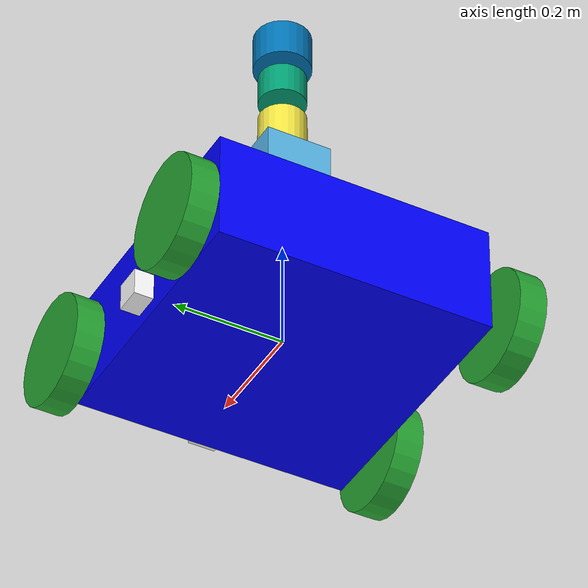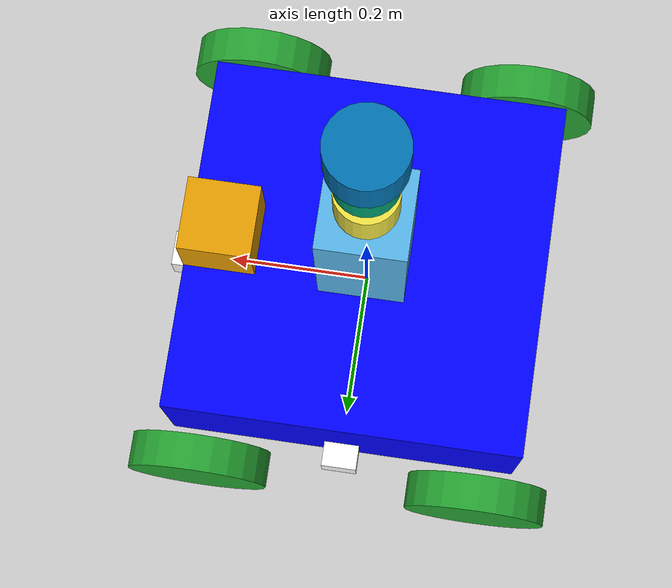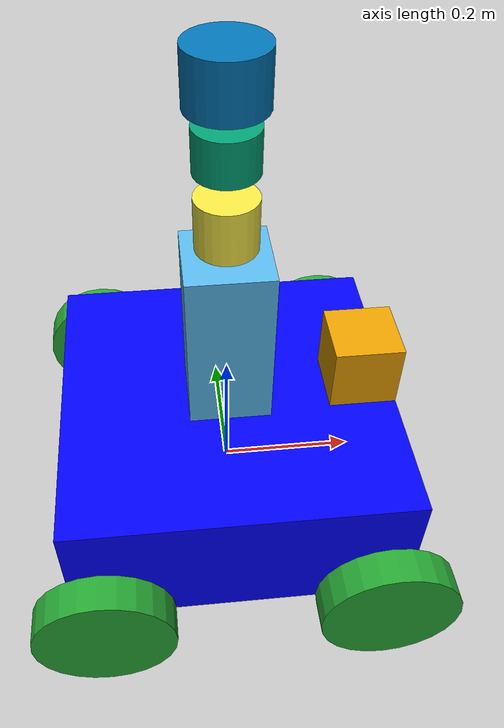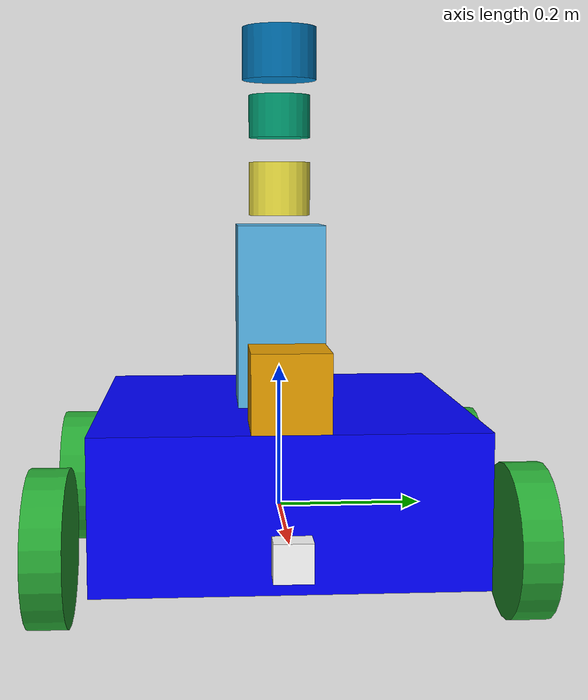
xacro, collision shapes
<?xml version='1.0'?>

<robot name="atom" xmlns:xacro="http://www.ros.org/wiki/xacro">
	<xacro:property name="robot_name" value="atom" />
	<xacro:property name="robot_chassis_mass" value="15"/>
	<xacro:property name="robot_chassis_length" value="0.2"/>
	<xacro:property name="robot_chassis_radius" value="0.25"/>
	<xacro:property name="robot_caster_wheel_radius" value="0.05"/>
	<xacro:property name="robot_caster_wheel_radius_collision" value="0.0499"/>

	<xacro:property name="robot_wheel_mass" value="5"/>
	<xacro:property name="robot_wheel_length" value="0.05"/>
	<xacro:property name="robot_wheel_radius" value="0.1"/>

	<xacro:property name="camera_mass" value="0.1"/>
	<xacro:property name="hokoyu_mass" value="1e-5"/>

  	<material name="blue">
    	<color rgba= "0 0 1 1"/>
  	</material>
  	<material name="grey">
    	<color rgba="0.75 0.75 0.75 1"/>
  	</material>

	<!-- Make Chassis of Bot -->
	<link name="chassis">
		<pose>0 0 0.1 0 0 0</pose>

		<inertial>
			<mass value="${robot_chassis_mass}"/>
      		<origin xyz="0.0 0 0" rpy=" 0 0 0"/>

      		<inertia
      			ixx="0.147116667" ixy="0" ixz="0"
      			iyy="0.334951167" iyz="0"
      			izz="0.3978345"
      		/>
		</inertial>

		<collision name="collision">
			<origin xyz="0 0 0.05" rpy=" 0 0 0"/>
			<geometry>
				<box size="0.5 0.5 0.2"/>
			</geometry>
		</collision>

		<visual name="chassis_visual">
			<origin xyz="0 0 0.05" rpy=" 0 0 0"/>
			<geometry>
				<box size="0.5 0.5 0.2"/>
			</geometry>
      <material name="blue"/>
		</visual>

	</link>

	<!-- Make lidar_mount of Bot -->
	<link name="3dlidar_mount">
		<pose>0 0 0.1 0 0 0</pose>

		<inertial>
			<mass value="${robot_chassis_mass}"/>
      		<origin xyz="0.0 0 0" rpy=" 0 0 0"/>

      		<inertia
      			ixx="0.147116667" ixy="0" ixz="0"
      			iyy="0.334951167" iyz="0"
      			izz="0.3978345"
      		/>
		</inertial>

		<collision name="collision">
			<origin xyz="0 0 0.05" rpy=" 0 0 0"/>
			<geometry>
				<box size="0.12 0.12 0.3"/>
			</geometry>
		</collision>

		<visual name="chassis_visual">
			<origin xyz="0 0 0.05" rpy=" 0 0 0"/>
			<geometry>
				<box size="0.12 0.12 0.3"/>
			</geometry>

		</visual>

	</link>

	<!-- Right Wheel Back -->
	<link name="right_wheel_back">
		<inertial>
			<mass value="${robot_wheel_mass}"/>
			<origin xyz="0 0 0" rpy="0 1.5707 1.5707"/>
			<inertia
				ixx="0.1" ixy="0.0" ixz="0.0"
				iyy="0.1" iyz="0.0"
				izz="0.1"
			/>
		</inertial>

		<visual>
			<origin xyz="0 0 0" rpy="0 1.5707 1.5707"/>
			<geometry>
				<cylinder radius="${robot_wheel_radius}" length="${robot_wheel_length}"/>
			</geometry>
		</visual>

		<collision>
			<origin xyz="0 0 0" rpy="0 1.5707 1.5707"/>
			<geometry>
				<cylinder radius="${robot_wheel_radius}" length="${robot_wheel_length}"/>
			</geometry>
		</collision>

	</link>

	<!-- Right Wheel Front-->
	<link name="right_wheel_front">
		<inertial>
			<mass value="${robot_wheel_mass}"/>
			<origin xyz="0 0 0" rpy="0 1.5707 1.5707"/>
			<inertia
				ixx="0.1" ixy="0.0" ixz="0.0"
				iyy="0.1" iyz="0.0"
				izz="0.1"
			/>
		</inertial>

		<visual>
			<origin xyz="0 0 0" rpy="0 1.5707 1.5707"/>
			<geometry>
				<cylinder radius="${robot_wheel_radius}" length="${robot_wheel_length}"/>
			</geometry>
		</visual>

		<collision>
			<origin xyz="0 0 0" rpy="0 1.5707 1.5707"/>
			<geometry>
				<cylinder radius="${robot_wheel_radius}" length="${robot_wheel_length}"/>
			</geometry>
		</collision>

	</link>

	<!-- Left wheel Back-->
	<link name="left_wheel_back">
		<inertial>
			<mass value="${robot_wheel_mass}"/>
			<origin xyz="0 0 0" rpy="0 1.5707 1.5707"/>
			<inertia
				ixx="0.1" ixy="0.0" ixz="0.0"
				iyy="0.1" iyz="0.0"
				izz="0.1"
			/>
		</inertial>

		<visual>
			<origin xyz="0 0 0" rpy="0 1.5707 1.5707"/>
			<geometry>
				<cylinder radius="${robot_wheel_radius}" length="${robot_wheel_length}"/>
			</geometry>
		</visual>

		<collision>
			<origin xyz="0 0 0" rpy="0 1.5707 1.5707"/>
			<geometry>
				<cylinder radius="${robot_wheel_radius}" length="${robot_wheel_length}"/>
			</geometry>
		</collision>

	</link>

	<!-- Left wheel Front-->
	<link name="left_wheel_front">
		<inertial>
			<mass value="${robot_wheel_mass}"/>
			<origin xyz="0 0 0" rpy="0 1.5707 1.5707"/>
			<inertia
				ixx="0.1" ixy="0.0" ixz="0.0"
				iyy="0.1" iyz="0.0"
				izz="0.1"
			/>
		</inertial>

		<visual>
			<origin xyz="0 0 0" rpy="0 1.5707 1.5707"/>
			<geometry>
				<cylinder radius="${robot_wheel_radius}" length="${robot_wheel_length}"/>
			</geometry>
		</visual>

		<collision>
			<origin xyz="0 0 0" rpy="0 1.5707 1.5707"/>
			<geometry>
				<cylinder radius="${robot_wheel_radius}" length="${robot_wheel_length}"/>
			</geometry>
		</collision>

	</link>

	<!-- Camera -->
	<link name="camera">
		<inertial>
			<mass value="${camera_mass}"/>
			<origin xyz="0 0 0" rpy="0 0 0"/>
			<inertia
		        ixx="1e-6" ixy="0.0" ixz="0.0"
		        iyy="1e-6" iyz="0.0"
		        izz="1e-6"
		      />
		</inertial>

		<visual>
			<origin xyz="0 0 0" rpy="0 0 0"/>
			<geometry>
				<box size="0.05 0.05 0.05"/>
			</geometry>
      <material name="white">
        <color rgba="1 1 1 1"/>
      </material>
		</visual>

		<collision>
			<origin xyz="0 0 0" rpy="0 0 0"/>
			<geometry>
				<box size="0.05 0.05 0.05"/>
			</geometry>
		</collision>
	</link>

	<!-- Camera1 -->
	<link name="camera1">
		<inertial>
			<mass value="${camera_mass}"/>
			<origin xyz="0 0 0" rpy="0 0 0"/>
			<inertia
		        ixx="1e-6" ixy="0.0" ixz="0.0"
		        iyy="1e-6" iyz="0.0"
		        izz="1e-6"
		      />
		</inertial>

		<visual>
			<origin xyz="0 0 0" rpy="0 0 0"/>
			<geometry>
				<box size="0.05 0.05 0.05"/>
			</geometry>
      <material name="white">
        <color rgba="1 1 1 1"/>
      </material>
		</visual>

		<collision>
			<origin xyz="0 0 0" rpy="0 0 0"/>
			<geometry>
				<box size="0.05 0.05 0.05"/>
			</geometry>
		</collision>
	</link>

	<!-- Hokuyo Lidar -->
	<link name="hokuyo">
		<inertial>
			<mass value="${hokoyu_mass}"/>
			<origin xyz="0 0 0" rpy="0 0 0"/>

			<inertia
		        ixx="1e-6" ixy="0.0" ixz="0.0"
		        iyy="1e-6" iyz="0.0"
		        izz="1e-6"
		      />
		</inertial>

		<visual>
			<origin xyz="0 0 0" rpy="0 0 0"/>
			<geometry>
				<mesh filename="package://atom/meshes/hokuyo.dae"/>
			</geometry>
		</visual>

		<collision>
			<origin xyz="0 0 0" rpy="0 0 0"/>
			<geometry>
				<box size="0.1 0.1 0.1"/>
			</geometry>
		</collision>
	</link>

	<!-- Project center to the ground -->
	<link name="robot_footprint"></link>

<!-- Give the base link a unique name -->
 <link name="3dlidar_base">

    <!-- Offset the base by half the lenght of the cylinder -->
    <pose>0 0 0.029335 0 0 0</pose>

	<inertial>
      <mass value="1.2"/>
	  <origin xyz="0 0 0.05" rpy=" 0 0 0"/>

      <inertia
        ixx="0.001087473"
        iyy="0.001087473"
        izz="0.001092437"
        ixy="0"
        ixz="0"
        iyz="0"
      />
    </inertial>
    <collision name="base_collision">
	    <origin xyz="0 0 0.05" rpy=" 0 0 0"/>
        <geometry>
			<cylinder length=".05867" radius=".04267"/>
        </geometry>
    </collision>

    <!-- The visual is mostly a copy of the collision -->
    <visual name="base_visual">
		<origin xyz="0 0 0.009" rpy=" 0 0 0"/>
      	<geometry>
        	<cylinder length=".05867" radius=".04267"/>
      	</geometry>
    </visual>
  </link> -->

  <!-- Give the base link a unique name -->
  <link name="3dlidar_top">

    <!-- Vertically offset the top cylinder by the length of the bottom
        cylinder and half the length of this cylinder. -->
    <pose>0 0 0.095455 0 0 0</pose>
	<inertial>
		<mass value="0.1"/>
		<inertia
        ixx="0.000090623"
        iyy="0.000090623"
        izz="0.000091036"
        ixy="0"
        ixz="0"
        iyz="0"
      />
   </inertial>
    <collision name="top_collision">
      <geometry>
	  <cylinder length="0.07357" radius=".04267"/>
      </geometry>
    </collision>

    <!-- The visual is mostly a copy of the collision -->
    <visual name="top_visual">
      <geometry>
	  <cylinder length="0.07357" radius=".04267"/>
      </geometry>
    </visual>
  </link>

	<!-- Define Joints -->

  <!-- Each joint must have a unique name -->
<joint name="3dlidar_baseTop_joint" type="revolute">

  <!-- Position the joint at the bottom of the top link -->
  <origin xyz="0 0 -0.05" rpy="0 0 0"/>

  <!-- Use the base link as the parent of the joint -->
  <parent link="3dlidar_base" />

  <!-- Use the top link as the child of the joint -->
  <child link="3dlidar_top" />

  <!-- The axis defines the joint's degree of freedom -->
  <axis xyz="0 0 1" />

    <!-- Limit refers to the range of motion of the joint -->
   <limit
      lower="-10000000000000000"
      upper="10000000000000000"
      velocity="2"
	    effort="1"
    />

</joint>

	<!-- Right Wheel Joint Back-->
	<joint type="continuous" name="right_wheel_hinge_back">
	    <origin xyz="-0.2 -0.30 0" rpy="0 0 0" />
	    <parent link="chassis"/>
	    <child link="right_wheel_back" />
	    <axis xyz="0 1 0" rpy="0 0 0" />
	    <limit effort="10000" velocity="1000" />
	    <dynamics damping="1.0" friction="1.0" />
	</joint>

	<!-- Right Wheel Joint Front-->
	<joint type="continuous" name="right_wheel_hinge_front">
	    <origin xyz="0.2 -0.30 0" rpy="0 0 0" />
	    <parent link="chassis"/>
	    <child link="right_wheel_front" />
	    <axis xyz="0 1 0" rpy="0 0 0" />
	    <limit effort="10000" velocity="1000" />
	    <dynamics damping="1.0" friction="1.0" />
	</joint>

	<!-- Left Wheel Joint Back-->
	<joint type="continuous" name="left_wheel_hinge_back">
	    <origin xyz="-0.2 0.30 0" rpy="0 0 0" />
	    <parent link="chassis"/>
	    <child link="left_wheel_back" />
	    <axis xyz="0 1 0" rpy="0 0 0" />
	    <limit effort="10000" velocity="1000" />
	    <dynamics damping="1.0" friction="1.0" />
	</joint>

	<!-- Left Wheel Joint Front-->
	<joint type="continuous" name="left_wheel_hinge_front">
	    <origin xyz="0.2 0.30 0" rpy="0 0 0" />
	    <parent link="chassis"/>
	    <child link="left_wheel_front" />
	    <axis xyz="0 1 0" rpy="0 0 0" />
	    <limit effort="10000" velocity="1000" />
	    <dynamics damping="1.0" friction="1.0" />
	</joint>

	<!-- Camera Joint -->
	<joint name="camera_joint" type="fixed">
		<origin xyz="0.26 0 0" rpy="0 0 0" />
		<parent link="chassis"/>
		<child link="camera" />
		<axis xyz="0 1 0"/>
	</joint>

<!-- Camera1 Joint -->
	<joint name="camera1_joint" type="fixed">
		<origin xyz="0 0.26 0" rpy="0 0 0" />
		<parent link="chassis"/>
		<child link="camera1" />
		<axis xyz="0 1 0"/>
	</joint>

	<!-- Hokoyu Joint -->
	<joint name="hokuyo_joint" type="fixed">
	    <origin xyz="0.2 0 0.2" rpy="0 0 0" />
	    <parent link="chassis"/>
	    <child link="hokuyo" />
	    <axis xyz="0 1 0"/>
	</joint>

	<!-- 3dlidar mount Joint -->
	<joint name="3dlidar_mount_joint" type="fixed">
	    <origin xyz="0.0 0 0.2" rpy="0 0 0" />
	    <parent link="chassis"/>
	    <child link="3dlidar_mount" />
	    <axis xyz="0 1 0"/>
	</joint>

  	<!-- 3dlidar Joint -->
	<joint name="3dlidar_joint" type="fixed">
	    <origin xyz="0.0 0 0.5" rpy="0 0 0" />
	    <parent link="chassis"/>
	    <child link="3dlidar_base" />
	    <axis xyz="0 1 0"/>
	</joint>

	<joint name="robot_footprint_joint" type="fixed">
		<origin xyz="0 0 0" rpy="0 0 0" />
		<parent link="robot_footprint"/>
		<child link="chassis" />
	</joint>

	<!-- Color of bot -->
	<gazebo reference="left_wheel_front">
		<material>Gazebo/Green</material>
		<kp>1000000.0</kp> <!-- kp and kd for rubber -->
		<kd>100.0</kd>
		<mu1>1.0</mu1>
		<mu2>1.0</mu2>
		<maxVel>1.0</maxVel>
		<minDepth>0.00</minDepth>
	</gazebo>

	<gazebo reference="left_wheel_back">
		<material>Gazebo/Green</material>
		<kp>1000000.0</kp> <!-- kp and kd for rubber -->
		<kd>100.0</kd>
		<mu1>1.0</mu1>
		<mu2>1.0</mu2>
		<maxVel>1.0</maxVel>
		<minDepth>0.00</minDepth>
	</gazebo>

	<gazebo reference="right_wheel_front">
		<material>Gazebo/Green</material>
		<kp>1000000.0</kp> <!-- kp and kd for rubber -->
		<kd>100.0</kd>
		<mu1>1.0</mu1>
		<mu2>1.0</mu2>
		<maxVel>1.0</maxVel>
		<minDepth>0.00</minDepth>
	</gazebo>
	<gazebo reference="right_wheel_back">
		<material>Gazebo/Green</material>
		<kp>1000000.0</kp> <!-- kp and kd for rubber -->
		<kd>100.0</kd>
		<mu1>1.0</mu1>
		<mu2>1.0</mu2>
		<maxVel>1.0</maxVel>
		<minDepth>0.00</minDepth>
	</gazebo>

	<gazebo reference="chassis">
  	<visual>
    <material>
      <ambient>0.19225 0.19225 0.19225 1.0</ambient>
      <diffuse>0.50754 0.50754 0.50754 1.0</diffuse>
      <specular>0.508273 0.508273 0.508273 1.0</specular>
      <emissive>0.0 0.0 0.0 0.0</emissive>
    </material>
 	</visual>
	</gazebo>

	<!-- Motor, Camera and Lidar Simulation -->
	<xacro:include filename="$(find atom)/urdf/atom.gazebo" />

	<xacro:include filename="$(find velodyne_description)/urdf/VLP-16.urdf.xacro"/>
  <xacro:VLP-16 parent="chassis" name="velodyne" topic="/velodyne_points" organize_cloud="false" hz="10" samples="440" gpu="false">
    <origin xyz="0 0 0.6" rpy="0 0 0" />
  </xacro:VLP-16>

</robot>

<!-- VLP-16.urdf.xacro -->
<robot xmlns:xacro="http://www.ros.org/wiki/xacro" name="VLP-16">
  <xacro:property name="M_PI" value="3.1415926535897931" />
  <xacro:macro name="VLP-16" params="*origin is_sim:=true parent:=base_link name:=velodyne tf_prefix:='' topic:=/velodyne_points organize_cloud:=false hz:=10 lasers:=16 samples:=1875 collision_range:=0.3 min_range:=0.0 max_range:=100.0 noise:=0.008 min_angle:=-${M_PI} max_angle:=${M_PI} gpu:=false">

    <joint name="${name}_base_mount_joint" type="fixed">
      <xacro:insert_block name="origin" />
      <parent link="${parent}"/>
      <child link="${name}_base_link"/>
    </joint>

    <link name="${name}_base_link">
      <inertial>
        <mass value="0.83"/>
        <origin xyz="0 0 0.03585"/>
        <inertia ixx="${(0.83 * (3.0*0.0516*0.0516 + 0.0717*0.0717)) / 12.0}" ixy="0" ixz="0"
          iyy="${(0.83 * (3.0*0.0516*0.0516 + 0.0717*0.0717)) / 12.0}" iyz="0"
          izz="${0.5 * 0.83 * (0.0516*0.0516)}"/>
      </inertial>
      <visual>
        <geometry>
          <mesh filename="package://velodyne_description/meshes/VLP16_base_1.dae" />
        </geometry>
      </visual>
      <visual>
        <geometry>
          <mesh filename="package://velodyne_description/meshes/VLP16_base_2.dae" />
        </geometry>
      </visual>
      <collision>
        <origin rpy="0 0 0" xyz="0 0 0.03585"/>
        <geometry>
          <cylinder radius="0.0516" length="0.0717"/>
        </geometry>
      </collision>
    </link>

    <joint name="${name}_base_scan_joint" type="fixed" >
      <origin xyz="0 0 0.0377" rpy="0 0 0" />
      <parent link="${name}_base_link" />
      <child link="${name}"/>
    </joint>

    <link name="${name}">
      <inertial>
        <mass value="0.01"/>
        <origin xyz="0 0 0"/>
        <inertia ixx="1e-7" ixy="0" ixz="0" iyy="1e-7" iyz="0" izz="1e-7"/>
      </inertial>
      <visual>
        <origin xyz="0 0 -0.0377" />
        <geometry>
          <mesh filename="package://velodyne_description/meshes/VLP16_scan.dae" />
        </geometry>
      </visual>
      <collision>
        <geometry>
          <sphere radius="0"/>
        </geometry>
      </collision>
    </link>

    <!-- Gazebo requires the velodyne_gazebo_plugins package -->
    <xacro:if value="${is_sim}">
        <gazebo reference="${name}">
            <xacro:if value="${gpu}">
                <sensor type="gpu_ray" name="${name}-VLP16">
                <pose>0 0 0 0 0 0</pose>
                <visualize>false</visualize>
                <update_rate>${hz}</update_rate>
                <ray>
                    <scan>
                    <horizontal>
                        <samples>${samples}</samples>
                        <resolution>1</resolution>
                        <min_angle>${min_angle}</min_angle>
                        <max_angle>${max_angle}</max_angle>
                    </horizontal>
                    <vertical>
                        <samples>${lasers}</samples>
                        <resolution>1</resolution>
                        <min_angle>-${15.0*M_PI/180.0}</min_angle>
                        <max_angle> ${15.0*M_PI/180.0}</max_angle>
                    </vertical>
                    </scan>
                    <range>
                    <min>${collision_range}</min>
                    <max>${max_range+1}</max>
                    <resolution>0.001</resolution>
                    </range>
                    <noise>
                    <type>gaussian</type>
                    <mean>0.0</mean>
                    <stddev>0.0</stddev>
                    </noise>
                </ray>
                <plugin name="gazebo_ros_laser_controller" filename="libgazebo_ros_velodyne_laser.so">
                    <ros>
                    <namespace>/${name}</namespace>
                    <remapping>~/out:=${topic}</remapping>
                    </ros>
                    <tf_prefix>${tf_prefix}</tf_prefix>
                    <frame_name>${name}</frame_name>
                    <organize_cloud>${organize_cloud}</organize_cloud>
                    <min_range>${min_range}</min_range>
                    <max_range>${max_range}</max_range>
                    <gaussian_noise>${noise}</gaussian_noise>
                </plugin>
                </sensor>
            </xacro:if>
            <xacro:unless value="${gpu}">
                <sensor type="ray" name="${name}-VLP16">
                <pose>0 0 0 0 0 0</pose>
                <visualize>false</visualize>
                <update_rate>${hz}</update_rate>
                <ray>
                    <scan>
                    <horizontal>
                        <samples>${samples}</samples>
                        <resolution>1</resolution>
                        <min_angle>${min_angle}</min_angle>
                        <max_angle>${max_angle}</max_angle>
                    </horizontal>
                    <vertical>
                        <samples>${lasers}</samples>
                        <resolution>1</resolution>
                        <min_angle>-${15.0*M_PI/180.0}</min_angle>
                        <max_angle> ${15.0*M_PI/180.0}</max_angle>
                    </vertical>
                    </scan>
                    <range>
                    <min>${collision_range}</min>
                    <max>${max_range+1}</max>
                    <resolution>0.001</resolution>
                    </range>
                    <noise>
                    <type>gaussian</type>
                    <mean>0.0</mean>
                    <stddev>0.0</stddev>
                    </noise>
                </ray>
                <plugin name="gazebo_ros_laser_controller" filename="libgazebo_ros_velodyne_laser.so">
                    <ros>
                    <namespace>/${name}</namespace>
                    <remapping>~/out:=${topic}</remapping>
                    </ros>
                    <tf_prefix>${tf_prefix}</tf_prefix>
                    <frame_name>${name}</frame_name>
                    <organize_cloud>${organize_cloud}</organize_cloud>
                    <min_range>${min_range}</min_range>
                    <max_range>${max_range}</max_range>
                    <gaussian_noise>${noise}</gaussian_noise>
                </plugin>
                </sensor>
            </xacro:unless>
        </gazebo>
    </xacro:if>

  </xacro:macro>
</robot>
